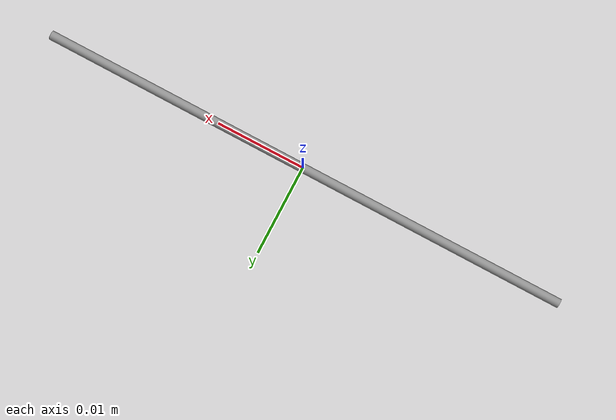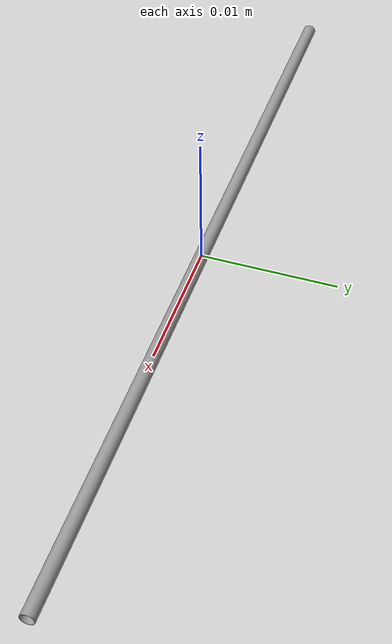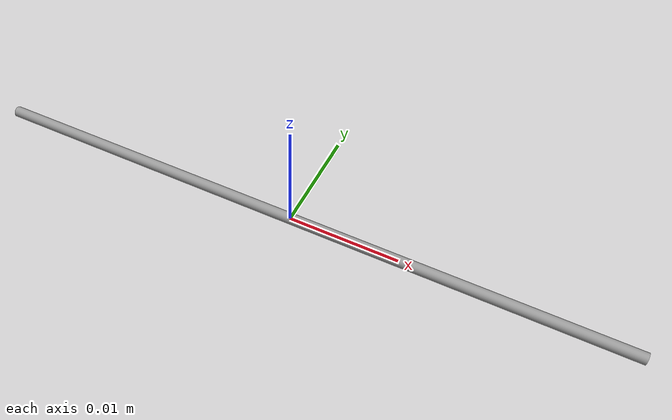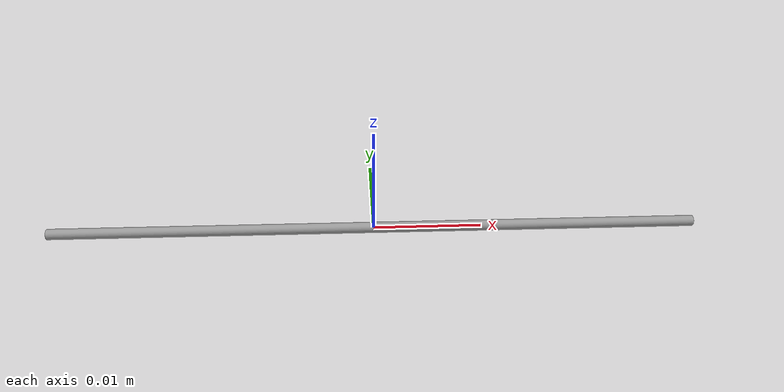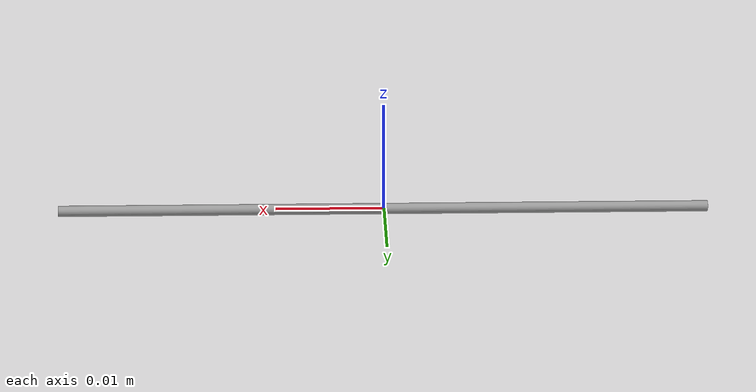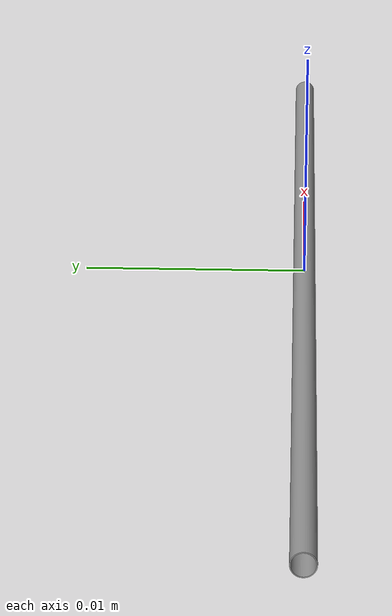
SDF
<?xml version="1.0"?>
<!--  |    This document was autogenerated by scene_to_spawner from pegaprile.dae              |  -->
<!--  |    EDITING THIS FILE BY HAND IS NOT RECOMMENDED                                        |  -->
<sdf version="1.4">
  <model name="pipe2">
    <static>true</static>
    <link name="link">
      <visual name="visual">
        <geometry>
          <mesh>
            <uri>file://$(env HOME)/.uwsim/data/objects/pegaprile.dae</uri>
          </mesh>
        </geometry>
      </visual>
      <collision name="collision">
        <geometry>
          <mesh>
            <uri>file://$(env HOME)/.uwsim/data/objects/pegaprile.dae</uri>
          </mesh>
        </geometry>
        <surface>
          <friction>
            <ode>
              <mu>100</mu>
              <mu2>50</mu2>
            </ode>
          </friction>
        </surface>
      </collision>
    </link>
  </model>
</sdf>
